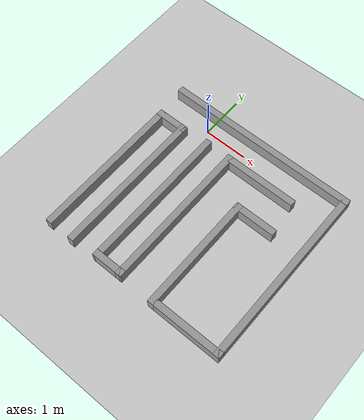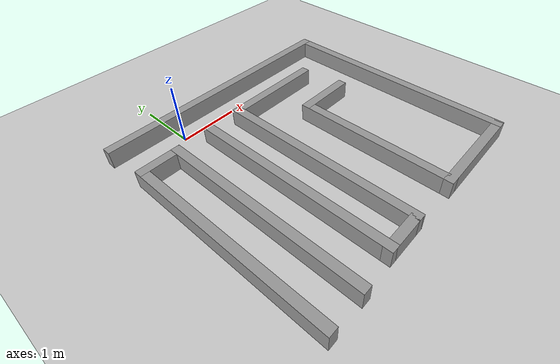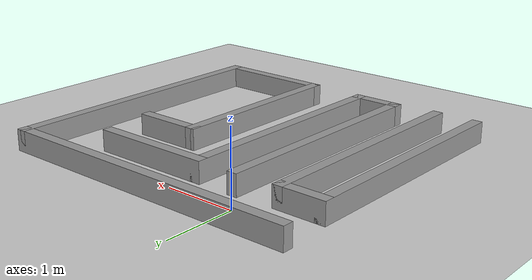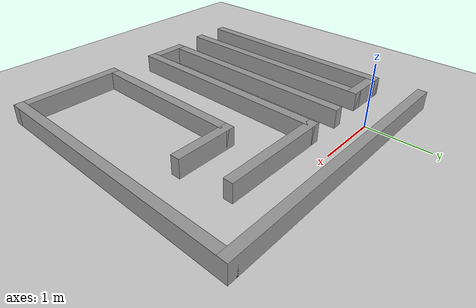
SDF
<sdf version="1.7">
 <world name="default">
  <light name="sun" type="directional">
   <pose>0 0 10 0 -0 0</pose>
   <diffuse>0.8 0.8 0.8 1</diffuse>
   <specular>0.2 0.2 0.2 1</specular>
   <attenuation>
    <range>1000</range>
    <constant>0.9</constant>
    <linear>0.01</linear>
    <quadratic>0.001</quadratic>
   </attenuation>
   <direction>-0.5 0.1 -0.9</direction>
   <spot><inner_angle>0</inner_angle><outer_angle>0</outer_angle><falloff>0</falloff></spot>
  </light>
  <model name="ground_plane">
   <static>1</static>
   <link name="link">
    <collision name="collision">
     <geometry><plane><normal>0 0 1</normal><size>100 100</size></plane></geometry>
     <surface><friction><ode><mu>100</mu><mu2>50</mu2></ode></friction></surface>
    </collision>
    <visual name="visual">
     <cast_shadows>0</cast_shadows>
     <geometry><plane><normal>0 0 1</normal><size>100 100</size></plane></geometry>
     <material>
      <script><uri>file://media/materials/scripts/gazebo.material</uri><name>Gazebo/Grey</name></script>
     </material>
    </visual>
   </link>
  </model>
  <gravity>0 0 -9.8</gravity>
  <magnetic_field>6e-06 2.3e-05 -4.2e-05</magnetic_field>
  <atmosphere type="adiabatic"/>
  <physics type="ode">
   <max_step_size>0.001</max_step_size>
   <real_time_factor>1</real_time_factor>
   <real_time_update_rate>1000</real_time_update_rate>
  </physics>
  <scene><ambient>0.4 0.4 0.4 1</ambient><background>0.7 0.7 0.7 1</background><shadows>1</shadows></scene>
  <audio><device>default</device></audio>
  <spherical_coordinates>
   <surface_model>EARTH_WGS84</surface_model>
   <latitude_deg>0</latitude_deg>
   <longitude_deg>0</longitude_deg>
   <elevation>0</elevation>
   <heading_deg>0</heading_deg>
  </spherical_coordinates>
  <model name="maze">
   <pose>1.15938 -1.71349 0 0 -0 0</pose>
   <link name="Wall_17">
    <collision name="Wall_17_Collision">
     <geometry><box><size>3.5 0.15 0.3</size></box></geometry>
     <pose>0 0 0.15 0 -0 0</pose>
    </collision>
    <visual name="Wall_17_Visual">
     <pose>0 0 0.15 0 -0 0</pose>
     <geometry><box><size>3.5 0.15 0.3</size></box></geometry>
     <material>
      <script><uri>file://media/materials/scripts/gazebo.material</uri><name>Gazebo/Grey</name></script>
      <ambient>1 1 1 1</ambient>
     </material>
     <meta><layer>0</layer></meta>
    </visual>
    <pose>-2.129 -0.3835 0 0 -0 1.5708</pose>
   </link>
   <link name="Wall_18">
    <collision name="Wall_18_Collision">
     <geometry><box><size>0.75 0.15 0.3</size></box></geometry>
     <pose>0 0 0.15 0 -0 0</pose>
    </collision>
    <visual name="Wall_18_Visual">
     <pose>0 0 0.15 0 -0 0</pose>
     <geometry><box><size>0.75 0.15 0.3</size></box></geometry>
     <material>
      <script><uri>file://media/materials/scripts/gazebo.material</uri><name>Gazebo/Grey</name></script>
      <ambient>1 1 1 1</ambient>
     </material>
     <meta><layer>0</layer></meta>
    </visual>
    <pose>-1.829 1.2915 0 0 -0 0</pose>
   </link>
   <link name="Wall_19">
    <collision name="Wall_19_Collision">
     <geometry><box><size>3.5 0.15 0.3</size></box></geometry>
     <pose>0 0 0.15 0 -0 0</pose>
    </collision>
    <visual name="Wall_19_Visual">
     <pose>0 0 0.15 0 -0 0</pose>
     <geometry><box><size>3.5 0.15 0.3</size></box></geometry>
     <material>
      <script><uri>file://media/materials/scripts/gazebo.material</uri><name>Gazebo/Grey</name></script>
      <ambient>1 1 1 1</ambient>
     </material>
     <meta><layer>0</layer></meta>
    </visual>
    <pose>-1.529 -0.3835 0 0 -0 -1.5708</pose>
   </link>
   <link name="Wall_22">
    <collision name="Wall_22_Collision">
     <geometry><box><size>3.5 0.15 0.3</size></box></geometry>
     <pose>0 0 0.15 0 -0 0</pose>
    </collision>
    <visual name="Wall_22_Visual">
     <pose>0 0 0.15 0 -0 0</pose>
     <geometry><box><size>3.5 0.15 0.3</size></box></geometry>
     <material>
      <script><uri>file://media/materials/scripts/gazebo.material</uri><name>Gazebo/Grey</name></script>
      <ambient>1 1 1 1</ambient>
     </material>
     <meta><layer>0</layer></meta>
    </visual>
    <pose>-0.887 -0.3375 0 0 -0 1.5708</pose>
   </link>
   <link name="Wall_24">
    <collision name="Wall_24_Collision">
     <geometry><box><size>0.75 0.15 0.3</size></box></geometry>
     <pose>0 0 0.15 0 -0 0</pose>
    </collision>
    <visual name="Wall_24_Visual">
     <pose>0 0 0.15 0 -0 0</pose>
     <geometry><box><size>0.75 0.15 0.3</size></box></geometry>
     <material>
      <script><uri>file://media/materials/scripts/gazebo.material</uri><name>Gazebo/Grey</name></script>
      <ambient>1 1 1 1</ambient>
     </material>
     <meta><layer>0</layer></meta>
    </visual>
    <pose>-0.587 -2.0125 0 0 -0 0</pose>
   </link>
   <link name="Wall_25">
    <collision name="Wall_25_Collision">
     <geometry><box><size>3.5 0.15 0.3</size></box></geometry>
     <pose>0 0 0.15 0 -0 0</pose>
    </collision>
    <visual name="Wall_25_Visual">
     <pose>0 0 0.15 0 -0 0</pose>
     <geometry><box><size>3.5 0.15 0.3</size></box></geometry>
     <material>
      <script><uri>file://media/materials/scripts/gazebo.material</uri><name>Gazebo/Grey</name></script>
      <ambient>1 1 1 1</ambient>
     </material>
     <meta><layer>0</layer></meta>
    </visual>
    <pose>-0.287 -0.3375 0 0 -0 1.5708</pose>
   </link>
   <link name="Wall_26">
    <collision name="Wall_26_Collision">
     <geometry><box><size>1.75 0.15 0.3</size></box></geometry>
     <pose>0 0 0.15 0 -0 0</pose>
    </collision>
    <visual name="Wall_26_Visual">
     <pose>0 0 0.15 0 -0 0</pose>
     <geometry><box><size>1.75 0.15 0.3</size></box></geometry>
     <material>
      <script><uri>file://media/materials/scripts/gazebo.material</uri><name>Gazebo/Grey</name></script>
      <ambient>1 1 1 1</ambient>
     </material>
     <meta><layer>0</layer></meta>
    </visual>
    <pose>0.513 1.3375 0 0 -0 0</pose>
   </link>
   <link name="Wall_28">
    <collision name="Wall_28_Collision">
     <geometry><box><size>4.5 0.15 0.3</size></box></geometry>
     <pose>0 0 0.15 0 -0 0</pose>
    </collision>
    <visual name="Wall_28_Visual">
     <pose>0 0 0.15 0 -0 0</pose>
     <geometry><box><size>4.5 0.15 0.3</size></box></geometry>
     <material>
      <script><uri>file://media/materials/scripts/gazebo.material</uri><name>Gazebo/Grey</name></script>
      <ambient>1 1 1 1</ambient>
     </material>
     <meta><layer>0</layer></meta>
    </visual>
    <pose>-0 2.0585 0 0 -0 0</pose>
   </link>
   <link name="Wall_29">
    <collision name="Wall_29_Collision">
     <geometry><box><size>4.25 0.15 0.3</size></box></geometry>
     <pose>0 0 0.15 0 -0 0</pose>
    </collision>
    <visual name="Wall_29_Visual">
     <pose>0 0 0.15 0 -0 0</pose>
     <geometry><box><size>4.25 0.15 0.3</size></box></geometry>
     <material>
      <script><uri>file://media/materials/scripts/gazebo.material</uri><name>Gazebo/Grey</name></script>
      <ambient>1 1 1 1</ambient>
     </material>
     <meta><layer>0</layer></meta>
    </visual>
    <pose>2.175 0.0085 0 0 -0 -1.5708</pose>
   </link>
   <link name="Wall_30">
    <collision name="Wall_30_Collision">
     <geometry><box><size>1.75 0.15 0.3</size></box></geometry>
     <pose>0 0 0.15 0 -0 0</pose>
    </collision>
    <visual name="Wall_30_Visual">
     <pose>0 0 0.15 0 -0 0</pose>
     <geometry><box><size>1.75 0.15 0.3</size></box></geometry>
     <material>
      <script><uri>file://media/materials/scripts/gazebo.material</uri><name>Gazebo/Grey</name></script>
      <ambient>1 1 1 1</ambient>
     </material>
     <meta><layer>0</layer></meta>
    </visual>
    <pose>1.375 -2.0415 0 0 -0 3.14159</pose>
   </link>
   <link name="Wall_31">
    <collision name="Wall_31_Collision">
     <geometry><box><size>2.75 0.15 0.3</size></box></geometry>
     <pose>0 0 0.15 0 -0 0</pose>
    </collision>
    <visual name="Wall_31_Visual">
     <pose>0 0 0.15 0 -0 0</pose>
     <geometry><box><size>2.75 0.15 0.3</size></box></geometry>
     <material>
      <script><uri>file://media/materials/scripts/gazebo.material</uri><name>Gazebo/Grey</name></script>
      <ambient>1 1 1 1</ambient>
     </material>
     <meta><layer>0</layer></meta>
    </visual>
    <pose>0.575 -0.7415 0 0 -0 1.5708</pose>
   </link>
   <link name="Wall_32">
    <collision name="Wall_32_Collision">
     <geometry><box><size>1 0.15 0.3</size></box></geometry>
     <pose>0 0 0.15 0 -0 0</pose>
    </collision>
    <visual name="Wall_32_Visual">
     <pose>0 0 0.15 0 -0 0</pose>
     <geometry><box><size>1 0.15 0.3</size></box></geometry>
     <material>
      <script><uri>file://media/materials/scripts/gazebo.material</uri><name>Gazebo/Grey</name></script>
      <ambient>1 1 1 1</ambient>
     </material>
     <meta><layer>0</layer></meta>
    </visual>
    <pose>1 0.5585 0 0 -0 0</pose>
   </link>
   <static>1</static>
  </model>
 </world>
</sdf>
